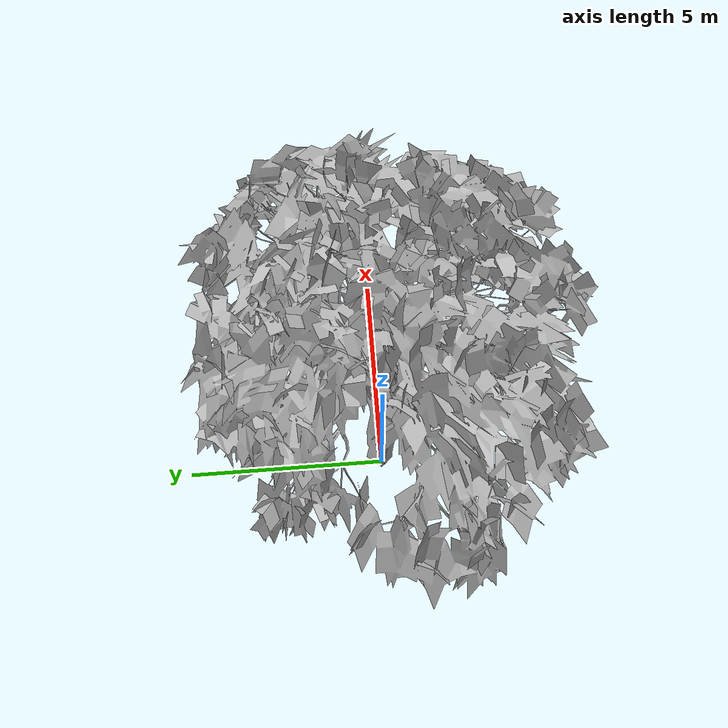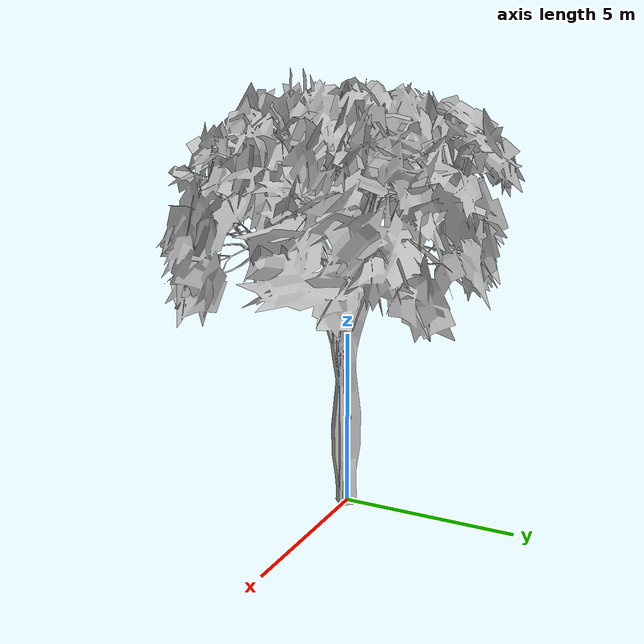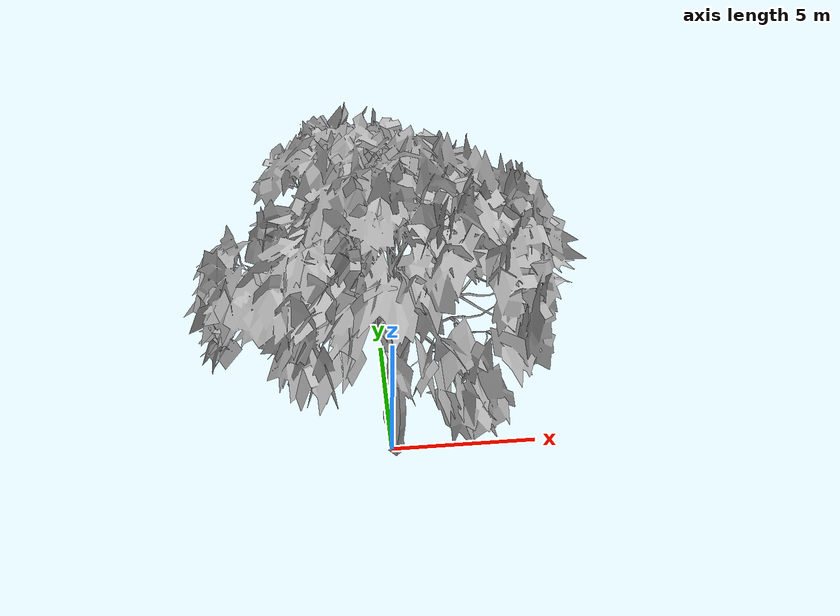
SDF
<?xml version="1.0" ?>
<sdf version="1.5">
  <model name="Tree 2">
    <static>true</static>
    <pose frame=''>0 0 0 1.57079 0 0</pose>
    <link name="link">
      <pose frame=''>0 0 0 0 0 0</pose>
      <collision name="collision">
        <geometry>
          <mesh>
            <scale>5 5 5</scale>
            <uri>model://tree_2/meshes/tree_2.obj</uri>
          </mesh>
        </geometry>
      </collision>
      <visual name="visual">
        <geometry>
          <mesh>

            <scale>5 5 5</scale>
            <uri>model://tree_2/meshes/tree_2.obj</uri>
          </mesh>
        </geometry>
      </visual>
    </link>
  </model>
</sdf>
